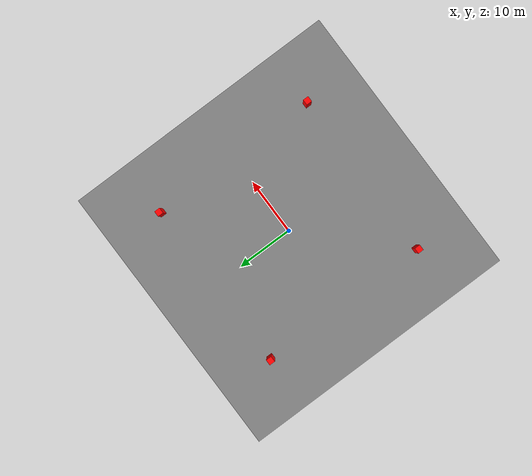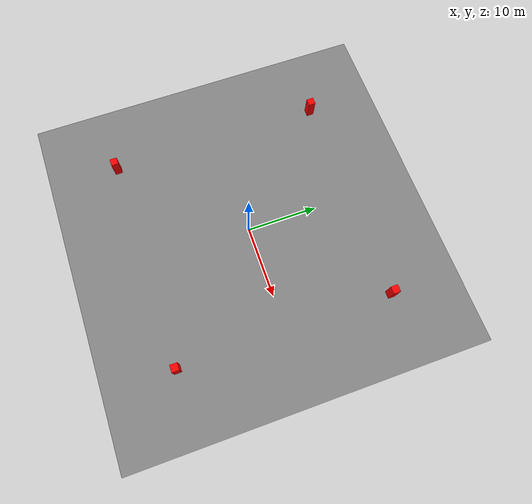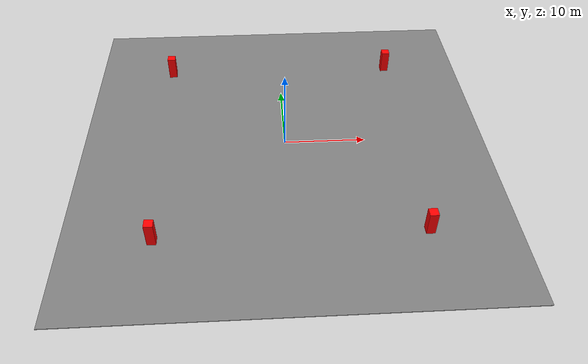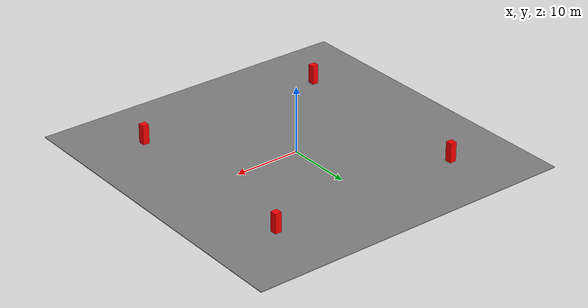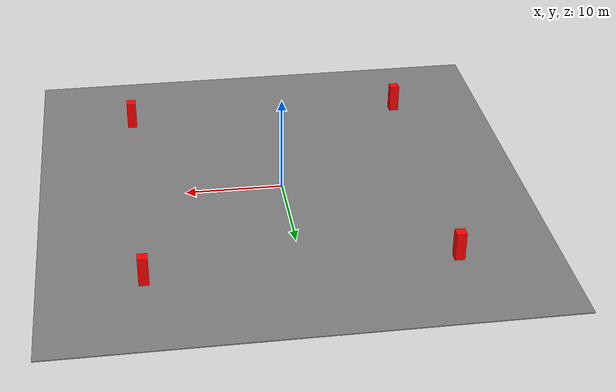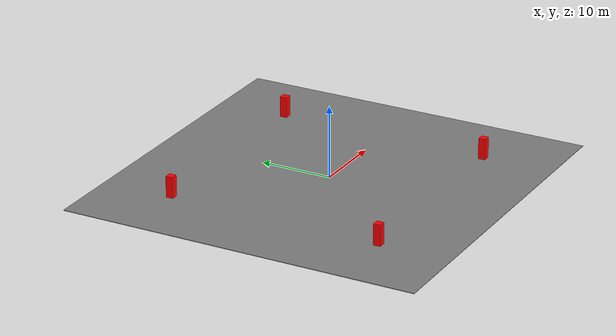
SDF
<?xml version="1.0" ?>
<sdf version="1.6">
  <world name="indoor_environment">
    <plugin name='ros_interface_plugin' filename='librotors_gazebo_ros_interface_plugin.so'/>
    <physics type='ode'>
      <gravity>0 0 -9.8</gravity>
      <max_step_size>0.001</max_step_size>
      <max_contacts>20</max_contacts> <!-- 最大碰撞检测点数 -->
      <real_time_factor>1</real_time_factor>
      <real_time_update_rate>1000</real_time_update_rate>
    </physics>
    <light name='sun' type='directional'>
      <cast_shadows>1</cast_shadows>
      <pose>0 0 10 0 -0 0</pose>
      <diffuse>0.8 0.8 0.8 1</diffuse>
      <specular>0.2 0.2 0.2 1</specular>
      <attenuation>
        <range>1000</range>
        <constant>0.9</constant>
        <linear>0.01</linear>
        <quadratic>0.001</quadratic>
      </attenuation>
      <direction>-0.5 0.1 -0.9</direction>
      <spot>
        <inner_angle>0</inner_angle>
        <outer_angle>0</outer_angle>
        <falloff>0</falloff>
      </spot>
    </light>

    <scene>
      <ambient>0.4 0.4 0.4 1</ambient>
      <background>0.7 0.7 0.7 1</background>
      <shadows>1</shadows>
    </scene>
    <spherical_coordinates>
      <surface_model>EARTH_WGS84</surface_model>
      <latitude_deg>0</latitude_deg>
      <longitude_deg>0</longitude_deg>
      <elevation>0</elevation>
      <heading_deg>0</heading_deg>
    </spherical_coordinates>

    <!-- 增加更大的地面 -->
    <model name="floor">
      <static>true</static> <!-- 地面是静态物体 -->
      <link name="floor_link">
        <collision name="collision">
          <geometry>
            <box>
              <size>50 50 0.1</size> <!-- 地面大小：50x50米，厚度0.1米 -->
            </box>
          </geometry>
        </collision>
        <visual name="visual">
          <geometry>
            <box>
              <size>50 50 0.1</size>
            </box>
          </geometry>
          <material>
            <ambient>0.5 0.5 0.5 1</ambient> <!-- 灰色地面 -->
            <diffuse>0.5 0.5 0.5 1</diffuse>
          </material>
        </visual>
      </link>
    </model>

    <model name="obstacle1">
      <pose>15 15 1.5 0 0 0</pose>
      <link name="link">
        <visual name="visual">
          <geometry>
            <box>
              <size>1 1 3</size> <!-- 视觉部分尺寸 -->
            </box>
          </geometry>
          <material>
            <ambient>1 0 0 1</ambient> <!-- 红色 -->
            <diffuse>1 0 0 1</diffuse>
            <specular>0.5 0.5 0.5 1</specular>
            <emissive>0 0 0 1</emissive>
            <transparency>0</transparency> <!-- 不透明 -->
          </material>
        </visual>
        <collision name="collision">
          <geometry>
            <box>
              <size>1 1 3</size> <!-- 碰撞部分尺寸 -->
            </box>
          </geometry>
        </collision>
      </link>
    </model>

    <model name="obstacle2">
      <pose>-15 15 1.5 0 0 0</pose>
      <link name="link">
        <visual name="visual">
          <geometry>
            <box>
              <size>1 1 3</size> <!-- 视觉部分尺寸 -->
            </box>
          </geometry>
          <material>
            <ambient>1 0 0 1</ambient> <!-- 红色 -->
            <diffuse>1 0 0 1</diffuse>
            <specular>0.5 0.5 0.5 1</specular>
            <emissive>0 0 0 1</emissive>
            <transparency>0</transparency> <!-- 不透明 -->
          </material>
        </visual>
        <collision name="collision">
          <geometry>
            <box>
              <size>1 1 3</size> <!-- 碰撞部分尺寸 -->
            </box>
          </geometry>
        </collision>
      </link>
    </model>

    <model name="obstacle3">
      <pose>15 -15 1.5 0 0 0</pose>
      <link name="link">
        <visual name="visual">
          <geometry>
            <box>
              <size>1 1 3</size> <!-- 视觉部分尺寸 -->
            </box>
          </geometry>
          <material>
            <ambient>1 0 0 1</ambient> <!-- 红色 -->
            <diffuse>1 0 0 1</diffuse>
            <specular>0.5 0.5 0.5 1</specular>
            <emissive>0 0 0 1</emissive>
            <transparency>0</transparency> <!-- 不透明 -->
          </material>
        </visual>
        <collision name="collision">
          <geometry>
            <box>
              <size>1 1 3</size> <!-- 碰撞部分尺寸 -->
            </box>
          </geometry>
        </collision>
      </link>
    </model>

    <model name="obstacle4">
      <pose>-15 -15 1.5 0 0 0</pose>
      <link name="link">
        <visual name="visual">
          <geometry>
            <box>
              <size>1 1 3</size> <!-- 视觉部分尺寸 -->
            </box>
          </geometry>
          <material>
            <ambient>1 0 0 1</ambient> <!-- 红色 -->
            <diffuse>1 0 0 1</diffuse>
            <specular>0.5 0.5 0.5 1</specular>
            <emissive>0 0 0 1</emissive>
            <transparency>0</transparency> <!-- 不透明 -->
          </material>
        </visual>
        <collision name="collision">
          <geometry>
            <box>
              <size>1 1 3</size> <!-- 碰撞部分尺寸 -->
            </box>
          </geometry>
        </collision>
      </link>
    </model>

  </world>
</sdf>
